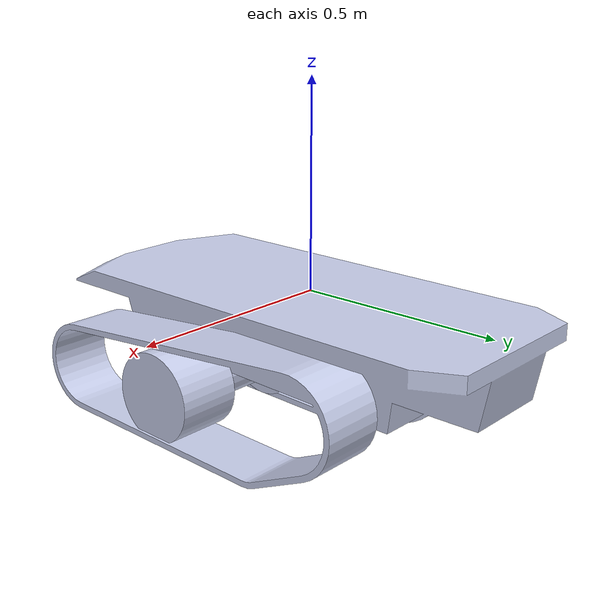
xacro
<?xml version="1.0"?>
<robot name="carbot" xmlns:xacro="http://www.ros.org/wiki/xacro" >

  <xacro:property name="frame_ground_offset" value="0.02"/>
  <xacro:property name="diff_wheels_radius" value="0.0501"/>

  <!-- BASE LINK -->
  <link name="base_link">
  </link>

<!-- Footprint link -->
  <link name="base_footprint">
  </link>
  <joint name="base_footprint_joint" type="fixed">
    <origin xyz="0 0 0" />
    <parent link="base_link" />
    <child link="base_footprint" />
  </joint>

<!-- Chassis link -->
  <link name="chassis_link">
    <visual>
      <origin
        xyz="0 0 0"
        rpy="0 0 0" />
      <geometry>
        <mesh
          filename="package://carbot/meshes/base_link.STL" />
      </geometry>
      <material
        name="">
        <color
          rgba="0.792156862745098 0.819607843137255 0.933333333333333 1" />
      </material>
    </visual>

    <inertial>
      <origin
        xyz="2.94902990916057E-17 -0.0519621145698546 -0.11319666441339"
        rpy="0 0 0" />
      <mass
        value="73.9732959024903" />
      <inertia
        ixx="7.4770569402914"
        ixy="1.11742454350262E-16"
        ixz="-3.11660956146003E-17"
        iyy="1.07779725747702"
        iyz="-0.19390857916837"
        izz="7.628441456232" />
    </inertial>

    <collision>
      <origin
        xyz="0 0 0"
        rpy="0 0 0" />
      <geometry>
        <mesh
          filename="package://carbot/meshes/base_link.STL" />
      </geometry>
    </collision>

  </link>
    <joint name="chassis_joint" type="fixed">
    <origin xyz="0 0 0" />
    <parent link="base_link" />
    <child link="chassis_link" />
  </joint>

<!-- Right-Drive link -->
  <link name="RD_link">
    <inertial>
      <origin
        xyz="-0.082144 5.5511E-17 -5.5916E-05"
        rpy="0 0 0" />
      <mass
        value="6.7723" />
      <inertia
        ixx="0.045319"
        ixy="1.2069E-20"
        ixz="-1.1116E-05"
        iyy="0.038062"
        iyz="-2.4619E-21"
        izz="0.038063" />
    </inertial>
    <visual>
      <origin
        xyz="0 0 0"
        rpy="0 0 0" />
      <geometry>
        <mesh
          filename="package://carbot/meshes/Link-right.STL" />
      </geometry>
      <material
        name="">
        <color
          rgba="0.79216 0.81961 0.93333 1" />
      </material>
    </visual>
    <collision>
      <origin
        xyz="0 0 0"
        rpy="0 0 0" />
      <geometry>
        <mesh
          filename="package://carbot/meshes/Link-right.STL" />
      </geometry>
    </collision>
  </link>

  <joint name="RD_joint"
    type="continuous">
    <origin
      xyz="0.2725 -0.26716 -0.26733"
      rpy="0 0 0" />
    <parent link="base_link" />
    <child link="RD_link" />
    <axis
      xyz="-1 0 0" />
  </joint>

<!-- Left-Drive link -->
  <link name="LD_link">
    <inertial>
      <origin
        xyz="0.082144 3.0583E-05 4.6811E-05"
        rpy="0 0 0" />
      <mass
        value="6.7723" />
      <inertia
        ixx="0.045319"
        ixy="-6.0801E-06"
        ixz="-9.3064E-06"
        iyy="0.038062"
        iyz="8.0019E-07"
        izz="0.038063" />
    </inertial>

    <visual>
      <origin
        xyz="0 0 0"
        rpy="0 0 0" />
      <geometry>
        <mesh
          filename="package://carbot/meshes/Link-left.STL" />
      </geometry>
      <material
        name="">
        <color
          rgba="0.79216 0.81961 0.93333 1" />
      </material>
    </visual>

    <collision>
      <origin
        xyz="0 0 0"
        rpy="0 0 0" />
      <geometry>
        <mesh
          filename="package://carbot/meshes/Link-left.STL" />
      </geometry>
    </collision>
  </link>

  <joint name="LD_joint"
    type="continuous">
    <origin
      xyz="-0.2725 -0.26467 -0.25895"
      rpy="0 0 0" />
    <parent link="base_link" />
    <child link="LD_link" />
    <axis
      xyz="1 0 0" />
  </joint>

<!-- Colors macros -->
  <material name="white">
    <color rgba="1 1 1 1" />
  </material>

  <material name="gray">
    <color rgba="0.5 0.5 0.5 1"/>
  </material>

  <material name="blue">
    <color rgba="0.2 0.2 1 1"/>
  </material>

  <material name="black">
    <color rgba="0 0 0 1"/>
  </material>

</robot>
